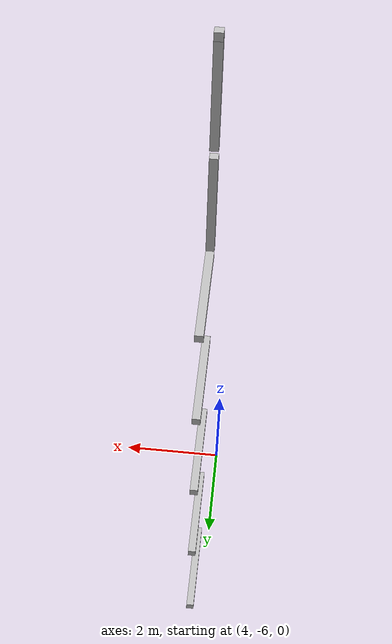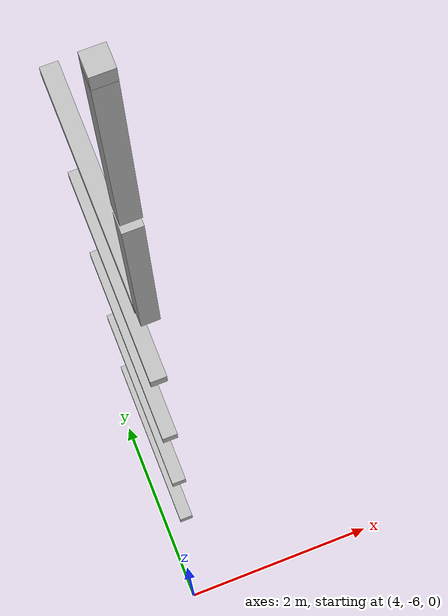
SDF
<sdf version="1.7">
 <world name="default">
  <model name="orthogonal_747_2.000.15_TS">
   <static>1</static>
   <link name="y_link_0_0_5">
    <inertial>
     <mass>1</mass>
     <inertia>
      <ixx>0.166667</ixx>
      <ixy>0</ixy>
      <ixz>0</ixz>
      <iyy>0.166667</iyy>
      <iyz>0</iyz>
      <izz>0.166667</izz>
     </inertia>
    </inertial>
    <pose>10.75 1.075 1.075 0 -0 0</pose>
    <visual name="visual_0">
     <laser_retro>113</laser_retro>
     <geometry><box><size>0.15 1e-06 0.15</size></box></geometry>
     <material>
      <script><name>Gazebo/Grey</name><uri>file://media/materials/scripts/gazebo.material</uri></script>
      <shader type="pixel"><normal_map>__default__</normal_map></shader>
      <ambient>0.678 0.498 0.659 1</ambient>
      <diffuse>0.7 0.7 0.7 1</diffuse>
      <specular>0.01 0.01 0.01 1</specular>
      <emissive>0 0 0 1</emissive>
     </material>
     <pose>0 -1 0 0 -0 0</pose>
     <transparency>1</transparency>
    </visual>
    <visual name="visual_1">
     <laser_retro>114</laser_retro>
     <geometry><box><size>0.15 1e-06 0.15</size></box></geometry>
     <material>
      <script><name>Gazebo/Grey</name><uri>file://media/materials/scripts/gazebo.material</uri></script>
      <shader type="pixel"><normal_map>__default__</normal_map></shader>
      <ambient>0.447 0.624 0.812 1</ambient>
      <diffuse>0.7 0.7 0.7 1</diffuse>
      <specular>0.01 0.01 0.01 1</specular>
      <emissive>0 0 0 1</emissive>
     </material>
     <pose>0 1 0 0 -0 0</pose>
     <transparency>1</transparency>
    </visual>
    <visual name="visual_2">
     <laser_retro>115</laser_retro>
     <geometry><box><size>0.15 2 1e-06</size></box></geometry>
     <material>
      <script><name>Gazebo/Grey</name><uri>file://media/materials/scripts/gazebo.material</uri></script>
      <shader type="pixel"><normal_map>__default__</normal_map></shader>
      <ambient>0.988 0.686 0.243 1</ambient>
      <diffuse>0.7 0.7 0.7 1</diffuse>
      <specular>0.01 0.01 0.01 1</specular>
      <emissive>0 0 0 1</emissive>
     </material>
     <pose>0 0 -0.075 0 -0 0</pose>
     <transparency>1</transparency>
    </visual>
    <visual name="visual_3">
     <laser_retro>116</laser_retro>
     <geometry><box><size>1e-06 2 0.15</size></box></geometry>
     <material>
      <script><name>Gazebo/Grey</name><uri>file://media/materials/scripts/gazebo.material</uri></script>
      <shader type="pixel"><normal_map>__default__</normal_map></shader>
      <ambient>0.988 0.914 0.31 1</ambient>
      <diffuse>0.7 0.7 0.7 1</diffuse>
      <specular>0.01 0.01 0.01 1</specular>
      <emissive>0 0 0 1</emissive>
     </material>
     <pose>0.075 0 0 0 -0 0</pose>
     <transparency>1</transparency>
    </visual>
    <visual name="visual_4">
     <laser_retro>117</laser_retro>
     <geometry><box><size>0.15 2 1e-06</size></box></geometry>
     <material>
      <script><name>Gazebo/Grey</name><uri>file://media/materials/scripts/gazebo.material</uri></script>
      <shader type="pixel"><normal_map>__default__</normal_map></shader>
      <ambient>0.937 0.161 0.161 1</ambient>
      <diffuse>0.7 0.7 0.7 1</diffuse>
      <specular>0.01 0.01 0.01 1</specular>
      <emissive>0 0 0 1</emissive>
     </material>
     <pose>0 0 0.075 0 -0 0</pose>
     <transparency>1</transparency>
    </visual>
    <visual name="visual_5">
     <laser_retro>118</laser_retro>
     <geometry><box><size>1e-06 2 0.15</size></box></geometry>
     <material>
      <script><name>Gazebo/Grey</name><uri>file://media/materials/scripts/gazebo.material</uri></script>
      <shader type="pixel"><normal_map>__default__</normal_map></shader>
      <ambient>0.541 0.886 0.204 1</ambient>
      <diffuse>0.7 0.7 0.7 1</diffuse>
      <specular>0.01 0.01 0.01 1</specular>
      <emissive>0 0 0 1</emissive>
     </material>
     <pose>-0.075 0 0 0 -0 0</pose>
     <transparency>1</transparency>
    </visual>
    <visual name="visual_texture">
     <geometry><box><size>0.149985 1.9998 0.149985</size></box></geometry>
     <material>
      <script>
       <uri>model://BASE_MODELS/simple_block_v2_textured/materials/scripts</uri>
       <uri>model://BASE_MODELS/simple_block_v2_textured/materials/textures</uri>
       <name>metal</name>
      </script>
     </material>
     <laser_retro>119</laser_retro>
    </visual>
    <collision name="collision">
     <geometry><box><size>0.15 2 0.15</size></box></geometry>
     <surface>
      <friction>
       <ode><mu>1</mu><mu2>1</mu2><fdir1>0 0 0</fdir1><slip1>0</slip1><slip2>0</slip2></ode>
       <torsional>
        <coefficient>1</coefficient>
        <patch_radius>0</patch_radius>
        <surface_radius>0</surface_radius>
        <use_patch_radius>1</use_patch_radius>
        <ode><slip>0</slip></ode>
       </torsional>
      </friction>
      <bounce><restitution_coefficient>0</restitution_coefficient><threshold>1e+06</threshold></bounce>
      <contact>
       <collide_without_contact>0</collide_without_contact>
       <collide_without_contact_bitmask>1</collide_without_contact_bitmask>
       <collide_bitmask>1</collide_bitmask>
       <ode>
        <soft_cfm>0</soft_cfm>
        <soft_erp>0.2</soft_erp>
        <kp>1e+13</kp>
        <kd>1</kd>
        <max_vel>0.01</max_vel>
        <min_depth>0</min_depth>
       </ode>
       <bullet>
        <split_impulse>1</split_impulse>
        <split_impulse_penetration_threshold>-0.01</split_impulse_penetration_threshold>
        <soft_cfm>0</soft_cfm>
        <soft_erp>0.2</soft_erp>
        <kp>1e+13</kp>
        <kd>1</kd>
       </bullet>
      </contact>
     </surface>
    </collision>
   </link>
   <link name="y_link_1_0_5">
    <inertial>
     <mass>1</mass>
     <inertia>
      <ixx>0.166667</ixx>
      <ixy>0</ixy>
      <ixz>0</ixz>
      <iyy>0.166667</iyy>
      <iyz>0</iyz>
      <izz>0.166667</izz>
     </inertia>
    </inertial>
    <pose>10.75 1.075 3.225 0 -0 0</pose>
    <visual name="visual_0">
     <laser_retro>897</laser_retro>
     <geometry><box><size>0.15 1e-06 0.15</size></box></geometry>
     <material>
      <script><name>Gazebo/Grey</name><uri>file://media/materials/scripts/gazebo.material</uri></script>
      <shader type="pixel"><normal_map>__default__</normal_map></shader>
      <ambient>0.678 0.498 0.659 1</ambient>
      <diffuse>0.7 0.7 0.7 1</diffuse>
      <specular>0.01 0.01 0.01 1</specular>
      <emissive>0 0 0 1</emissive>
     </material>
     <pose>0 -1 0 0 -0 0</pose>
     <transparency>1</transparency>
    </visual>
    <visual name="visual_1">
     <laser_retro>898</laser_retro>
     <geometry><box><size>0.15 1e-06 0.15</size></box></geometry>
     <material>
      <script><name>Gazebo/Grey</name><uri>file://media/materials/scripts/gazebo.material</uri></script>
      <shader type="pixel"><normal_map>__default__</normal_map></shader>
      <ambient>0.447 0.624 0.812 1</ambient>
      <diffuse>0.7 0.7 0.7 1</diffuse>
      <specular>0.01 0.01 0.01 1</specular>
      <emissive>0 0 0 1</emissive>
     </material>
     <pose>0 1 0 0 -0 0</pose>
     <transparency>1</transparency>
    </visual>
    <visual name="visual_2">
     <laser_retro>899</laser_retro>
     <geometry><box><size>0.15 2 1e-06</size></box></geometry>
     <material>
      <script><name>Gazebo/Grey</name><uri>file://media/materials/scripts/gazebo.material</uri></script>
      <shader type="pixel"><normal_map>__default__</normal_map></shader>
      <ambient>0.988 0.686 0.243 1</ambient>
      <diffuse>0.7 0.7 0.7 1</diffuse>
      <specular>0.01 0.01 0.01 1</specular>
      <emissive>0 0 0 1</emissive>
     </material>
     <pose>0 0 -0.075 0 -0 0</pose>
     <transparency>1</transparency>
    </visual>
    <visual name="visual_3">
     <laser_retro>900</laser_retro>
     <geometry><box><size>1e-06 2 0.15</size></box></geometry>
     <material>
      <script><name>Gazebo/Grey</name><uri>file://media/materials/scripts/gazebo.material</uri></script>
      <shader type="pixel"><normal_map>__default__</normal_map></shader>
      <ambient>0.988 0.914 0.31 1</ambient>
      <diffuse>0.7 0.7 0.7 1</diffuse>
      <specular>0.01 0.01 0.01 1</specular>
      <emissive>0 0 0 1</emissive>
     </material>
     <pose>0.075 0 0 0 -0 0</pose>
     <transparency>1</transparency>
    </visual>
    <visual name="visual_4">
     <laser_retro>901</laser_retro>
     <geometry><box><size>0.15 2 1e-06</size></box></geometry>
     <material>
      <script><name>Gazebo/Grey</name><uri>file://media/materials/scripts/gazebo.material</uri></script>
      <shader type="pixel"><normal_map>__default__</normal_map></shader>
      <ambient>0.937 0.161 0.161 1</ambient>
      <diffuse>0.7 0.7 0.7 1</diffuse>
      <specular>0.01 0.01 0.01 1</specular>
      <emissive>0 0 0 1</emissive>
     </material>
     <pose>0 0 0.075 0 -0 0</pose>
     <transparency>1</transparency>
    </visual>
    <visual name="visual_5">
     <laser_retro>902</laser_retro>
     <geometry><box><size>1e-06 2 0.15</size></box></geometry>
     <material>
      <script><name>Gazebo/Grey</name><uri>file://media/materials/scripts/gazebo.material</uri></script>
      <shader type="pixel"><normal_map>__default__</normal_map></shader>
      <ambient>0.541 0.886 0.204 1</ambient>
      <diffuse>0.7 0.7 0.7 1</diffuse>
      <specular>0.01 0.01 0.01 1</specular>
      <emissive>0 0 0 1</emissive>
     </material>
     <pose>-0.075 0 0 0 -0 0</pose>
     <transparency>1</transparency>
    </visual>
    <visual name="visual_texture">
     <geometry><box><size>0.149985 1.9998 0.149985</size></box></geometry>
     <material>
      <script>
       <uri>model://BASE_MODELS/simple_block_v2_textured/materials/scripts</uri>
       <uri>model://BASE_MODELS/simple_block_v2_textured/materials/textures</uri>
       <name>metal</name>
      </script>
     </material>
     <laser_retro>903</laser_retro>
    </visual>
    <collision name="collision">
     <geometry><box><size>0.15 2 0.15</size></box></geometry>
     <surface>
      <friction>
       <ode><mu>1</mu><mu2>1</mu2><fdir1>0 0 0</fdir1><slip1>0</slip1><slip2>0</slip2></ode>
       <torsional>
        <coefficient>1</coefficient>
        <patch_radius>0</patch_radius>
        <surface_radius>0</surface_radius>
        <use_patch_radius>1</use_patch_radius>
        <ode><slip>0</slip></ode>
       </torsional>
      </friction>
      <bounce><restitution_coefficient>0</restitution_coefficient><threshold>1e+06</threshold></bounce>
      <contact>
       <collide_without_contact>0</collide_without_contact>
       <collide_without_contact_bitmask>1</collide_without_contact_bitmask>
       <collide_bitmask>1</collide_bitmask>
       <ode>
        <soft_cfm>0</soft_cfm>
        <soft_erp>0.2</soft_erp>
        <kp>1e+13</kp>
        <kd>1</kd>
        <max_vel>0.01</max_vel>
        <min_depth>0</min_depth>
       </ode>
       <bullet>
        <split_impulse>1</split_impulse>
        <split_impulse_penetration_threshold>-0.01</split_impulse_penetration_threshold>
        <soft_cfm>0</soft_cfm>
        <soft_erp>0.2</soft_erp>
        <kp>1e+13</kp>
        <kd>1</kd>
       </bullet>
      </contact>
     </surface>
    </collision>
   </link>
   <link name="y_link_2_0_5">
    <inertial>
     <mass>1</mass>
     <inertia>
      <ixx>0.166667</ixx>
      <ixy>0</ixy>
      <ixz>0</ixz>
      <iyy>0.166667</iyy>
      <iyz>0</iyz>
      <izz>0.166667</izz>
     </inertia>
    </inertial>
    <pose>10.75 1.075 5.375 0 -0 0</pose>
    <visual name="visual_0">
     <laser_retro>1800</laser_retro>
     <geometry><box><size>0.15 1e-06 0.15</size></box></geometry>
     <material>
      <script><name>Gazebo/Grey</name><uri>file://media/materials/scripts/gazebo.material</uri></script>
      <shader type="pixel"><normal_map>__default__</normal_map></shader>
      <ambient>0.678 0.498 0.659 1</ambient>
      <diffuse>0.7 0.7 0.7 1</diffuse>
      <specular>0.01 0.01 0.01 1</specular>
      <emissive>0 0 0 1</emissive>
     </material>
     <pose>0 -1 0 0 -0 0</pose>
     <transparency>1</transparency>
    </visual>
    <visual name="visual_1">
     <laser_retro>1801</laser_retro>
     <geometry><box><size>0.15 1e-06 0.15</size></box></geometry>
     <material>
      <script><name>Gazebo/Grey</name><uri>file://media/materials/scripts/gazebo.material</uri></script>
      <shader type="pixel"><normal_map>__default__</normal_map></shader>
      <ambient>0.447 0.624 0.812 1</ambient>
      <diffuse>0.7 0.7 0.7 1</diffuse>
      <specular>0.01 0.01 0.01 1</specular>
      <emissive>0 0 0 1</emissive>
     </material>
     <pose>0 1 0 0 -0 0</pose>
     <transparency>1</transparency>
    </visual>
    <visual name="visual_2">
     <laser_retro>1802</laser_retro>
     <geometry><box><size>0.15 2 1e-06</size></box></geometry>
     <material>
      <script><name>Gazebo/Grey</name><uri>file://media/materials/scripts/gazebo.material</uri></script>
      <shader type="pixel"><normal_map>__default__</normal_map></shader>
      <ambient>0.988 0.686 0.243 1</ambient>
      <diffuse>0.7 0.7 0.7 1</diffuse>
      <specular>0.01 0.01 0.01 1</specular>
      <emissive>0 0 0 1</emissive>
     </material>
     <pose>0 0 -0.075 0 -0 0</pose>
     <transparency>1</transparency>
    </visual>
    <visual name="visual_3">
     <laser_retro>1803</laser_retro>
     <geometry><box><size>1e-06 2 0.15</size></box></geometry>
     <material>
      <script><name>Gazebo/Grey</name><uri>file://media/materials/scripts/gazebo.material</uri></script>
      <shader type="pixel"><normal_map>__default__</normal_map></shader>
      <ambient>0.988 0.914 0.31 1</ambient>
      <diffuse>0.7 0.7 0.7 1</diffuse>
      <specular>0.01 0.01 0.01 1</specular>
      <emissive>0 0 0 1</emissive>
     </material>
     <pose>0.075 0 0 0 -0 0</pose>
     <transparency>1</transparency>
    </visual>
    <visual name="visual_4">
     <laser_retro>1804</laser_retro>
     <geometry><box><size>0.15 2 1e-06</size></box></geometry>
     <material>
      <script><name>Gazebo/Grey</name><uri>file://media/materials/scripts/gazebo.material</uri></script>
      <shader type="pixel"><normal_map>__default__</normal_map></shader>
      <ambient>0.937 0.161 0.161 1</ambient>
      <diffuse>0.7 0.7 0.7 1</diffuse>
      <specular>0.01 0.01 0.01 1</specular>
      <emissive>0 0 0 1</emissive>
     </material>
     <pose>0 0 0.075 0 -0 0</pose>
     <transparency>1</transparency>
    </visual>
    <visual name="visual_5">
     <laser_retro>1805</laser_retro>
     <geometry><box><size>1e-06 2 0.15</size></box></geometry>
     <material>
      <script><name>Gazebo/Grey</name><uri>file://media/materials/scripts/gazebo.material</uri></script>
      <shader type="pixel"><normal_map>__default__</normal_map></shader>
      <ambient>0.541 0.886 0.204 1</ambient>
      <diffuse>0.7 0.7 0.7 1</diffuse>
      <specular>0.01 0.01 0.01 1</specular>
      <emissive>0 0 0 1</emissive>
     </material>
     <pose>-0.075 0 0 0 -0 0</pose>
     <transparency>1</transparency>
    </visual>
    <visual name="visual_texture">
     <geometry><box><size>0.149985 1.9998 0.149985</size></box></geometry>
     <material>
      <script>
       <uri>model://BASE_MODELS/simple_block_v2_textured/materials/scripts</uri>
       <uri>model://BASE_MODELS/simple_block_v2_textured/materials/textures</uri>
       <name>metal</name>
      </script>
     </material>
     <laser_retro>1806</laser_retro>
    </visual>
    <collision name="collision">
     <geometry><box><size>0.15 2 0.15</size></box></geometry>
     <surface>
      <friction>
       <ode><mu>1</mu><mu2>1</mu2><fdir1>0 0 0</fdir1><slip1>0</slip1><slip2>0</slip2></ode>
       <torsional>
        <coefficient>1</coefficient>
        <patch_radius>0</patch_radius>
        <surface_radius>0</surface_radius>
        <use_patch_radius>1</use_patch_radius>
        <ode><slip>0</slip></ode>
       </torsional>
      </friction>
      <bounce><restitution_coefficient>0</restitution_coefficient><threshold>1e+06</threshold></bounce>
      <contact>
       <collide_without_contact>0</collide_without_contact>
       <collide_without_contact_bitmask>1</collide_without_contact_bitmask>
       <collide_bitmask>1</collide_bitmask>
       <ode>
        <soft_cfm>0</soft_cfm>
        <soft_erp>0.2</soft_erp>
        <kp>1e+13</kp>
        <kd>1</kd>
        <max_vel>0.01</max_vel>
        <min_depth>0</min_depth>
       </ode>
       <bullet>
        <split_impulse>1</split_impulse>
        <split_impulse_penetration_threshold>-0.01</split_impulse_penetration_threshold>
        <soft_cfm>0</soft_cfm>
        <soft_erp>0.2</soft_erp>
        <kp>1e+13</kp>
        <kd>1</kd>
       </bullet>
      </contact>
     </surface>
    </collision>
   </link>
   <link name="y_link_3_0_5">
    <inertial>
     <mass>1</mass>
     <inertia>
      <ixx>0.166667</ixx>
      <ixy>0</ixy>
      <ixz>0</ixz>
      <iyy>0.166667</iyy>
      <iyz>0</iyz>
      <izz>0.166667</izz>
     </inertia>
    </inertial>
    <pose>10.75 1.075 7.525 0 -0 0</pose>
    <visual name="visual_0">
     <laser_retro>2703</laser_retro>
     <geometry><box><size>0.15 1e-06 0.15</size></box></geometry>
     <material>
      <script><name>Gazebo/Grey</name><uri>file://media/materials/scripts/gazebo.material</uri></script>
      <shader type="pixel"><normal_map>__default__</normal_map></shader>
      <ambient>0.678 0.498 0.659 1</ambient>
      <diffuse>0.7 0.7 0.7 1</diffuse>
      <specular>0.01 0.01 0.01 1</specular>
      <emissive>0 0 0 1</emissive>
     </material>
     <pose>0 -1 0 0 -0 0</pose>
     <transparency>1</transparency>
    </visual>
    <visual name="visual_1">
     <laser_retro>2704</laser_retro>
     <geometry><box><size>0.15 1e-06 0.15</size></box></geometry>
     <material>
      <script><name>Gazebo/Grey</name><uri>file://media/materials/scripts/gazebo.material</uri></script>
      <shader type="pixel"><normal_map>__default__</normal_map></shader>
      <ambient>0.447 0.624 0.812 1</ambient>
      <diffuse>0.7 0.7 0.7 1</diffuse>
      <specular>0.01 0.01 0.01 1</specular>
      <emissive>0 0 0 1</emissive>
     </material>
     <pose>0 1 0 0 -0 0</pose>
     <transparency>1</transparency>
    </visual>
    <visual name="visual_2">
     <laser_retro>2705</laser_retro>
     <geometry><box><size>0.15 2 1e-06</size></box></geometry>
     <material>
      <script><name>Gazebo/Grey</name><uri>file://media/materials/scripts/gazebo.material</uri></script>
      <shader type="pixel"><normal_map>__default__</normal_map></shader>
      <ambient>0.988 0.686 0.243 1</ambient>
      <diffuse>0.7 0.7 0.7 1</diffuse>
      <specular>0.01 0.01 0.01 1</specular>
      <emissive>0 0 0 1</emissive>
     </material>
     <pose>0 0 -0.075 0 -0 0</pose>
     <transparency>1</transparency>
    </visual>
    <visual name="visual_3">
     <laser_retro>2706</laser_retro>
     <geometry><box><size>1e-06 2 0.15</size></box></geometry>
     <material>
      <script><name>Gazebo/Grey</name><uri>file://media/materials/scripts/gazebo.material</uri></script>
      <shader type="pixel"><normal_map>__default__</normal_map></shader>
      <ambient>0.988 0.914 0.31 1</ambient>
      <diffuse>0.7 0.7 0.7 1</diffuse>
      <specular>0.01 0.01 0.01 1</specular>
      <emissive>0 0 0 1</emissive>
     </material>
     <pose>0.075 0 0 0 -0 0</pose>
     <transparency>1</transparency>
    </visual>
    <visual name="visual_4">
     <laser_retro>2707</laser_retro>
     <geometry><box><size>0.15 2 1e-06</size></box></geometry>
     <material>
      <script><name>Gazebo/Grey</name><uri>file://media/materials/scripts/gazebo.material</uri></script>
      <shader type="pixel"><normal_map>__default__</normal_map></shader>
      <ambient>0.937 0.161 0.161 1</ambient>
      <diffuse>0.7 0.7 0.7 1</diffuse>
      <specular>0.01 0.01 0.01 1</specular>
      <emissive>0 0 0 1</emissive>
     </material>
     <pose>0 0 0.075 0 -0 0</pose>
     <transparency>1</transparency>
    </visual>
    <visual name="visual_5">
     <laser_retro>2708</laser_retro>
     <geometry><box><size>1e-06 2 0.15</size></box></geometry>
     <material>
      <script><name>Gazebo/Grey</name><uri>file://media/materials/scripts/gazebo.material</uri></script>
      <shader type="pixel"><normal_map>__default__</normal_map></shader>
      <ambient>0.541 0.886 0.204 1</ambient>
      <diffuse>0.7 0.7 0.7 1</diffuse>
      <specular>0.01 0.01 0.01 1</specular>
      <emissive>0 0 0 1</emissive>
     </material>
     <pose>-0.075 0 0 0 -0 0</pose>
     <transparency>1</transparency>
    </visual>
    <visual name="visual_texture">
     <geometry><box><size>0.149985 1.9998 0.149985</size></box></geometry>
     <material>
      <script>
       <uri>model://BASE_MODELS/simple_block_v2_textured/materials/scripts</uri>
       <uri>model://BASE_MODELS/simple_block_v2_textured/materials/textures</uri>
       <name>metal</name>
      </script>
     </material>
     <laser_retro>2709</laser_retro>
    </visual>
    <collision name="collision">
     <geometry><box><size>0.15 2 0.15</size></box></geometry>
     <surface>
      <friction>
       <ode><mu>1</mu><mu2>1</mu2><fdir1>0 0 0</fdir1><slip1>0</slip1><slip2>0</slip2></ode>
       <torsional>
        <coefficient>1</coefficient>
        <patch_radius>0</patch_radius>
        <surface_radius>0</surface_radius>
        <use_patch_radius>1</use_patch_radius>
        <ode><slip>0</slip></ode>
       </torsional>
      </friction>
      <bounce><restitution_coefficient>0</restitution_coefficient><threshold>1e+06</threshold></bounce>
      <contact>
       <collide_without_contact>0</collide_without_contact>
       <collide_without_contact_bitmask>1</collide_without_contact_bitmask>
       <collide_bitmask>1</collide_bitmask>
       <ode>
        <soft_cfm>0</soft_cfm>
        <soft_erp>0.2</soft_erp>
        <kp>1e+13</kp>
        <kd>1</kd>
        <max_vel>0.01</max_vel>
        <min_depth>0</min_depth>
       </ode>
       <bullet>
        <split_impulse>1</split_impulse>
        <split_impulse_penetration_threshold>-0.01</split_impulse_penetration_threshold>
        <soft_cfm>0</soft_cfm>
        <soft_erp>0.2</soft_erp>
        <kp>1e+13</kp>
        <kd>1</kd>
       </bullet>
      </contact>
     </surface>
    </collision>
   </link>
   <link name="y_link_4_0_5">
    <inertial>
     <mass>1</mass>
     <inertia>
      <ixx>0.166667</ixx>
      <ixy>0</ixy>
      <ixz>0</ixz>
      <iyy>0.166667</iyy>
      <iyz>0</iyz>
      <izz>0.166667</izz>
     </inertia>
    </inertial>
    <pose>10.75 1.075 9.675 0 -0 0</pose>
    <visual name="visual_0">
     <laser_retro>3606</laser_retro>
     <geometry><box><size>0.15 1e-06 0.15</size></box></geometry>
     <material>
      <script><name>Gazebo/Grey</name><uri>file://media/materials/scripts/gazebo.material</uri></script>
      <shader type="pixel"><normal_map>__default__</normal_map></shader>
      <ambient>0.678 0.498 0.659 1</ambient>
      <diffuse>0.7 0.7 0.7 1</diffuse>
      <specular>0.01 0.01 0.01 1</specular>
      <emissive>0 0 0 1</emissive>
     </material>
     <pose>0 -1 0 0 -0 0</pose>
     <transparency>1</transparency>
    </visual>
    <visual name="visual_1">
     <laser_retro>3607</laser_retro>
     <geometry><box><size>0.15 1e-06 0.15</size></box></geometry>
     <material>
      <script><name>Gazebo/Grey</name><uri>file://media/materials/scripts/gazebo.material</uri></script>
      <shader type="pixel"><normal_map>__default__</normal_map></shader>
      <ambient>0.447 0.624 0.812 1</ambient>
      <diffuse>0.7 0.7 0.7 1</diffuse>
      <specular>0.01 0.01 0.01 1</specular>
      <emissive>0 0 0 1</emissive>
     </material>
     <pose>0 1 0 0 -0 0</pose>
     <transparency>1</transparency>
    </visual>
    <visual name="visual_2">
     <laser_retro>3608</laser_retro>
     <geometry><box><size>0.15 2 1e-06</size></box></geometry>
     <material>
      <script><name>Gazebo/Grey</name><uri>file://media/materials/scripts/gazebo.material</uri></script>
      <shader type="pixel"><normal_map>__default__</normal_map></shader>
      <ambient>0.988 0.686 0.243 1</ambient>
      <diffuse>0.7 0.7 0.7 1</diffuse>
      <specular>0.01 0.01 0.01 1</specular>
      <emissive>0 0 0 1</emissive>
     </material>
     <pose>0 0 -0.075 0 -0 0</pose>
     <transparency>1</transparency>
    </visual>
    <visual name="visual_3">
     <laser_retro>3609</laser_retro>
     <geometry><box><size>1e-06 2 0.15</size></box></geometry>
     <material>
      <script><name>Gazebo/Grey</name><uri>file://media/materials/scripts/gazebo.material</uri></script>
      <shader type="pixel"><normal_map>__default__</normal_map></shader>
      <ambient>0.988 0.914 0.31 1</ambient>
      <diffuse>0.7 0.7 0.7 1</diffuse>
      <specular>0.01 0.01 0.01 1</specular>
      <emissive>0 0 0 1</emissive>
     </material>
     <pose>0.075 0 0 0 -0 0</pose>
     <transparency>1</transparency>
    </visual>
    <visual name="visual_4">
     <laser_retro>3610</laser_retro>
     <geometry><box><size>0.15 2 1e-06</size></box></geometry>
     <material>
      <script><name>Gazebo/Grey</name><uri>file://media/materials/scripts/gazebo.material</uri></script>
      <shader type="pixel"><normal_map>__default__</normal_map></shader>
      <ambient>0.937 0.161 0.161 1</ambient>
      <diffuse>0.7 0.7 0.7 1</diffuse>
      <specular>0.01 0.01 0.01 1</specular>
      <emissive>0 0 0 1</emissive>
     </material>
     <pose>0 0 0.075 0 -0 0</pose>
     <transparency>1</transparency>
    </visual>
    <visual name="visual_5">
     <laser_retro>3611</laser_retro>
     <geometry><box><size>1e-06 2 0.15</size></box></geometry>
     <material>
      <script><name>Gazebo/Grey</name><uri>file://media/materials/scripts/gazebo.material</uri></script>
      <shader type="pixel"><normal_map>__default__</normal_map></shader>
      <ambient>0.541 0.886 0.204 1</ambient>
      <diffuse>0.7 0.7 0.7 1</diffuse>
      <specular>0.01 0.01 0.01 1</specular>
      <emissive>0 0 0 1</emissive>
     </material>
     <pose>-0.075 0 0 0 -0 0</pose>
     <transparency>1</transparency>
    </visual>
    <visual name="visual_texture">
     <geometry><box><size>0.149985 1.9998 0.149985</size></box></geometry>
     <material>
      <script>
       <uri>model://BASE_MODELS/simple_block_v2_textured/materials/scripts</uri>
       <uri>model://BASE_MODELS/simple_block_v2_textured/materials/textures</uri>
       <name>metal</name>
      </script>
     </material>
     <laser_retro>3612</laser_retro>
    </visual>
    <collision name="collision">
     <geometry><box><size>0.15 2 0.15</size></box></geometry>
     <surface>
      <friction>
       <ode><mu>1</mu><mu2>1</mu2><fdir1>0 0 0</fdir1><slip1>0</slip1><slip2>0</slip2></ode>
       <torsional>
        <coefficient>1</coefficient>
        <patch_radius>0</patch_radius>
        <surface_radius>0</surface_radius>
        <use_patch_radius>1</use_patch_radius>
        <ode><slip>0</slip></ode>
       </torsional>
      </friction>
      <bounce><restitution_coefficient>0</restitution_coefficient><threshold>1e+06</threshold></bounce>
      <contact>
       <collide_without_contact>0</collide_without_contact>
       <collide_without_contact_bitmask>1</collide_without_contact_bitmask>
       <collide_bitmask>1</collide_bitmask>
       <ode>
        <soft_cfm>0</soft_cfm>
        <soft_erp>0.2</soft_erp>
        <kp>1e+13</kp>
        <kd>1</kd>
        <max_vel>0.01</max_vel>
        <min_depth>0</min_depth>
       </ode>
       <bullet>
        <split_impulse>1</split_impulse>
        <split_impulse_penetration_threshold>-0.01</split_impulse_penetration_threshold>
        <soft_cfm>0</soft_cfm>
        <soft_erp>0.2</soft_erp>
        <kp>1e+13</kp>
        <kd>1</kd>
       </bullet>
      </contact>
     </surface>
    </collision>
   </link>
   <link name="z_link_5_0_5">
    <inertial>
     <mass>1</mass>
     <inertia>
      <ixx>0.166667</ixx>
      <ixy>0</ixy>
      <ixz>0</ixz>
      <iyy>0.166667</iyy>
      <iyz>0</iyz>
      <izz>0.166667</izz>
     </inertia>
    </inertial>
    <pose>10.75 0 10.75 0 -0 0</pose>
    <visual name="visual_0">
     <laser_retro>4523</laser_retro>
     <geometry><box><size>0.15 1e-06 2</size></box></geometry>
     <material>
      <script><name>Gazebo/Grey</name><uri>file://media/materials/scripts/gazebo.material</uri></script>
      <shader type="pixel"><normal_map>__default__</normal_map></shader>
      <ambient>0.678 0.498 0.659 1</ambient>
      <diffuse>0.7 0.7 0.7 1</diffuse>
      <specular>0.01 0.01 0.01 1</specular>
      <emissive>0 0 0 1</emissive>
     </material>
     <pose>0 -0.075 0 0 -0 0</pose>
     <transparency>1</transparency>
    </visual>
    <visual name="visual_1">
     <laser_retro>4524</laser_retro>
     <geometry><box><size>0.15 1e-06 2</size></box></geometry>
     <material>
      <script><name>Gazebo/Grey</name><uri>file://media/materials/scripts/gazebo.material</uri></script>
      <shader type="pixel"><normal_map>__default__</normal_map></shader>
      <ambient>0.447 0.624 0.812 1</ambient>
      <diffuse>0.7 0.7 0.7 1</diffuse>
      <specular>0.01 0.01 0.01 1</specular>
      <emissive>0 0 0 1</emissive>
     </material>
     <pose>0 0.075 0 0 -0 0</pose>
     <transparency>1</transparency>
    </visual>
    <visual name="visual_2">
     <laser_retro>4525</laser_retro>
     <geometry><box><size>0.15 0.15 1e-06</size></box></geometry>
     <material>
      <script><name>Gazebo/Grey</name><uri>file://media/materials/scripts/gazebo.material</uri></script>
      <shader type="pixel"><normal_map>__default__</normal_map></shader>
      <ambient>0.988 0.686 0.243 1</ambient>
      <diffuse>0.7 0.7 0.7 1</diffuse>
      <specular>0.01 0.01 0.01 1</specular>
      <emissive>0 0 0 1</emissive>
     </material>
     <pose>0 0 -1 0 -0 0</pose>
     <transparency>1</transparency>
    </visual>
    <visual name="visual_3">
     <laser_retro>4526</laser_retro>
     <geometry><box><size>1e-06 0.15 2</size></box></geometry>
     <material>
      <script><name>Gazebo/Grey</name><uri>file://media/materials/scripts/gazebo.material</uri></script>
      <shader type="pixel"><normal_map>__default__</normal_map></shader>
      <ambient>0.988 0.914 0.31 1</ambient>
      <diffuse>0.7 0.7 0.7 1</diffuse>
      <specular>0.01 0.01 0.01 1</specular>
      <emissive>0 0 0 1</emissive>
     </material>
     <pose>0.075 0 0 0 -0 0</pose>
     <transparency>1</transparency>
    </visual>
    <visual name="visual_4">
     <laser_retro>4527</laser_retro>
     <geometry><box><size>0.15 0.15 1e-06</size></box></geometry>
     <material>
      <script><name>Gazebo/Grey</name><uri>file://media/materials/scripts/gazebo.material</uri></script>
      <shader type="pixel"><normal_map>__default__</normal_map></shader>
      <ambient>0.937 0.161 0.161 1</ambient>
      <diffuse>0.7 0.7 0.7 1</diffuse>
      <specular>0.01 0.01 0.01 1</specular>
      <emissive>0 0 0 1</emissive>
     </material>
     <pose>0 0 1 0 -0 0</pose>
     <transparency>1</transparency>
    </visual>
    <visual name="visual_5">
     <laser_retro>4528</laser_retro>
     <geometry><box><size>1e-06 0.15 2</size></box></geometry>
     <material>
      <script><name>Gazebo/Grey</name><uri>file://media/materials/scripts/gazebo.material</uri></script>
      <shader type="pixel"><normal_map>__default__</normal_map></shader>
      <ambient>0.541 0.886 0.204 1</ambient>
      <diffuse>0.7 0.7 0.7 1</diffuse>
      <specular>0.01 0.01 0.01 1</specular>
      <emissive>0 0 0 1</emissive>
     </material>
     <pose>-0.075 0 0 0 -0 0</pose>
     <transparency>1</transparency>
    </visual>
    <visual name="visual_texture">
     <geometry><box><size>0.149985 0.149985 1.9998</size></box></geometry>
     <material>
      <script>
       <uri>model://BASE_MODELS/simple_block_v2_textured/materials/scripts</uri>
       <uri>model://BASE_MODELS/simple_block_v2_textured/materials/textures</uri>
       <name>metal</name>
      </script>
     </material>
     <laser_retro>4529</laser_retro>
    </visual>
    <collision name="collision">
     <geometry><box><size>0.15 0.15 2</size></box></geometry>
     <surface>
      <friction>
       <ode><mu>1</mu><mu2>1</mu2><fdir1>0 0 0</fdir1><slip1>0</slip1><slip2>0</slip2></ode>
       <torsional>
        <coefficient>1</coefficient>
        <patch_radius>0</patch_radius>
        <surface_radius>0</surface_radius>
        <use_patch_radius>1</use_patch_radius>
        <ode><slip>0</slip></ode>
       </torsional>
      </friction>
      <bounce><restitution_coefficient>0</restitution_coefficient><threshold>1e+06</threshold></bounce>
      <contact>
       <collide_without_contact>0</collide_without_contact>
       <collide_without_contact_bitmask>1</collide_without_contact_bitmask>
       <collide_bitmask>1</collide_bitmask>
       <ode>
        <soft_cfm>0</soft_cfm>
        <soft_erp>0.2</soft_erp>
        <kp>1e+13</kp>
        <kd>1</kd>
        <max_vel>0.01</max_vel>
        <min_depth>0</min_depth>
       </ode>
       <bullet>
        <split_impulse>1</split_impulse>
        <split_impulse_penetration_threshold>-0.01</split_impulse_penetration_threshold>
        <soft_cfm>0</soft_cfm>
        <soft_erp>0.2</soft_erp>
        <kp>1e+13</kp>
        <kd>1</kd>
       </bullet>
      </contact>
     </surface>
    </collision>
   </link>
   <link name="u_link_6_0_5">
    <inertial>
     <mass>1</mass>
     <inertia>
      <ixx>0.166667</ixx>
      <ixy>0</ixy>
      <ixz>0</ixz>
      <iyy>0.166667</iyy>
      <iyz>0</iyz>
      <izz>0.166667</izz>
     </inertia>
    </inertial>
    <pose>10.75 0 13.975 0 -0 0</pose>
    <visual name="visual_0">
     <laser_retro>5419</laser_retro>
     <geometry><box><size>0.15 1e-06 0.15</size></box></geometry>
     <material>
      <script><name>Gazebo/Grey</name><uri>file://media/materials/scripts/gazebo.material</uri></script>
      <shader type="pixel"><normal_map>__default__</normal_map></shader>
      <ambient>0.678 0.498 0.659 1</ambient>
      <diffuse>0.7 0.7 0.7 1</diffuse>
      <specular>0.01 0.01 0.01 1</specular>
      <emissive>0 0 0 1</emissive>
     </material>
     <pose>0 -0.075 0 0 -0 0</pose>
     <transparency>1</transparency>
    </visual>
    <visual name="visual_1">
     <laser_retro>5420</laser_retro>
     <geometry><box><size>0.15 1e-06 0.15</size></box></geometry>
     <material>
      <script><name>Gazebo/Grey</name><uri>file://media/materials/scripts/gazebo.material</uri></script>
      <shader type="pixel"><normal_map>__default__</normal_map></shader>
      <ambient>0.447 0.624 0.812 1</ambient>
      <diffuse>0.7 0.7 0.7 1</diffuse>
      <specular>0.01 0.01 0.01 1</specular>
      <emissive>0 0 0 1</emissive>
     </material>
     <pose>0 0.075 0 0 -0 0</pose>
     <transparency>1</transparency>
    </visual>
    <visual name="visual_2">
     <laser_retro>5421</laser_retro>
     <geometry><box><size>0.15 0.15 1e-06</size></box></geometry>
     <material>
      <script><name>Gazebo/Grey</name><uri>file://media/materials/scripts/gazebo.material</uri></script>
      <shader type="pixel"><normal_map>__default__</normal_map></shader>
      <ambient>0.988 0.686 0.243 1</ambient>
      <diffuse>0.7 0.7 0.7 1</diffuse>
      <specular>0.01 0.01 0.01 1</specular>
      <emissive>0 0 0 1</emissive>
     </material>
     <pose>0 0 -0.075 0 -0 0</pose>
     <transparency>1</transparency>
    </visual>
    <visual name="visual_3">
     <laser_retro>5422</laser_retro>
     <geometry><box><size>1e-06 0.15 0.15</size></box></geometry>
     <material>
      <script><name>Gazebo/Grey</name><uri>file://media/materials/scripts/gazebo.material</uri></script>
      <shader type="pixel"><normal_map>__default__</normal_map></shader>
      <ambient>0.988 0.914 0.31 1</ambient>
      <diffuse>0.7 0.7 0.7 1</diffuse>
      <specular>0.01 0.01 0.01 1</specular>
      <emissive>0 0 0 1</emissive>
     </material>
     <pose>0.075 0 0 0 -0 0</pose>
     <transparency>1</transparency>
    </visual>
    <visual name="visual_4">
     <laser_retro>5423</laser_retro>
     <geometry><box><size>0.15 0.15 1e-06</size></box></geometry>
     <material>
      <script><name>Gazebo/Grey</name><uri>file://media/materials/scripts/gazebo.material</uri></script>
      <shader type="pixel"><normal_map>__default__</normal_map></shader>
      <ambient>0.937 0.161 0.161 1</ambient>
      <diffuse>0.7 0.7 0.7 1</diffuse>
      <specular>0.01 0.01 0.01 1</specular>
      <emissive>0 0 0 1</emissive>
     </material>
     <pose>0 0 0.075 0 -0 0</pose>
     <transparency>1</transparency>
    </visual>
    <visual name="visual_5">
     <laser_retro>5424</laser_retro>
     <geometry><box><size>1e-06 0.15 0.15</size></box></geometry>
     <material>
      <script><name>Gazebo/Grey</name><uri>file://media/materials/scripts/gazebo.material</uri></script>
      <shader type="pixel"><normal_map>__default__</normal_map></shader>
      <ambient>0.541 0.886 0.204 1</ambient>
      <diffuse>0.7 0.7 0.7 1</diffuse>
      <specular>0.01 0.01 0.01 1</specular>
      <emissive>0 0 0 1</emissive>
     </material>
     <pose>-0.075 0 0 0 -0 0</pose>
     <transparency>1</transparency>
    </visual>
    <visual name="visual_texture">
     <geometry><box><size>0.149985 0.149985 0.149985</size></box></geometry>
     <material>
      <script>
       <uri>model://BASE_MODELS/simple_block_v2_textured/materials/scripts</uri>
       <uri>model://BASE_MODELS/simple_block_v2_textured/materials/textures</uri>
       <name>metal</name>
      </script>
     </material>
     <laser_retro>5425</laser_retro>
    </visual>
    <collision name="collision">
     <geometry><box><size>0.15 0.15 0.15</size></box></geometry>
     <surface>
      <friction>
       <ode><mu>1</mu><mu2>1</mu2><fdir1>0 0 0</fdir1><slip1>0</slip1><slip2>0</slip2></ode>
       <torsional>
        <coefficient>1</coefficient>
        <patch_radius>0</patch_radius>
        <surface_radius>0</surface_radius>
        <use_patch_radius>1</use_patch_radius>
        <ode><slip>0</slip></ode>
       </torsional>
      </friction>
      <bounce><restitution_coefficient>0</restitution_coefficient><threshold>1e+06</threshold></bounce>
      <contact>
       <collide_without_contact>0</collide_without_contact>
       <collide_without_contact_bitmask>1</collide_without_contact_bitmask>
       <collide_bitmask>1</collide_bitmask>
       <ode>
        <soft_cfm>0</soft_cfm>
        <soft_erp>0.2</soft_erp>
        <kp>1e+13</kp>
        <kd>1</kd>
        <max_vel>0.01</max_vel>
        <min_depth>0</min_depth>
       </ode>
       <bullet>
        <split_impulse>1</split_impulse>
        <split_impulse_penetration_threshold>-0.01</split_impulse_penetration_threshold>
        <soft_cfm>0</soft_cfm>
        <soft_erp>0.2</soft_erp>
        <kp>1e+13</kp>
        <kd>1</kd>
       </bullet>
      </contact>
     </surface>
    </collision>
   </link>
   <link name="z_link_6_0_5">
    <inertial>
     <mass>1</mass>
     <inertia>
      <ixx>0.166667</ixx>
      <ixy>0</ixy>
      <ixz>0</ixz>
      <iyy>0.166667</iyy>
      <iyz>0</iyz>
      <izz>0.166667</izz>
     </inertia>
    </inertial>
    <pose>10.75 0 12.9 0 -0 0</pose>
    <visual name="visual_0">
     <laser_retro>5426</laser_retro>
     <geometry><box><size>0.15 1e-06 2</size></box></geometry>
     <material>
      <script><name>Gazebo/Grey</name><uri>file://media/materials/scripts/gazebo.material</uri></script>
      <shader type="pixel"><normal_map>__default__</normal_map></shader>
      <ambient>0.678 0.498 0.659 1</ambient>
      <diffuse>0.7 0.7 0.7 1</diffuse>
      <specular>0.01 0.01 0.01 1</specular>
      <emissive>0 0 0 1</emissive>
     </material>
     <pose>0 -0.075 0 0 -0 0</pose>
     <transparency>1</transparency>
    </visual>
    <visual name="visual_1">
     <laser_retro>5427</laser_retro>
     <geometry><box><size>0.15 1e-06 2</size></box></geometry>
     <material>
      <script><name>Gazebo/Grey</name><uri>file://media/materials/scripts/gazebo.material</uri></script>
      <shader type="pixel"><normal_map>__default__</normal_map></shader>
      <ambient>0.447 0.624 0.812 1</ambient>
      <diffuse>0.7 0.7 0.7 1</diffuse>
      <specular>0.01 0.01 0.01 1</specular>
      <emissive>0 0 0 1</emissive>
     </material>
     <pose>0 0.075 0 0 -0 0</pose>
     <transparency>1</transparency>
    </visual>
    <visual name="visual_2">
     <laser_retro>5428</laser_retro>
     <geometry><box><size>0.15 0.15 1e-06</size></box></geometry>
     <material>
      <script><name>Gazebo/Grey</name><uri>file://media/materials/scripts/gazebo.material</uri></script>
      <shader type="pixel"><normal_map>__default__</normal_map></shader>
      <ambient>0.988 0.686 0.243 1</ambient>
      <diffuse>0.7 0.7 0.7 1</diffuse>
      <specular>0.01 0.01 0.01 1</specular>
      <emissive>0 0 0 1</emissive>
     </material>
     <pose>0 0 -1 0 -0 0</pose>
     <transparency>1</transparency>
    </visual>
    <visual name="visual_3">
     <laser_retro>5429</laser_retro>
     <geometry><box><size>1e-06 0.15 2</size></box></geometry>
     <material>
      <script><name>Gazebo/Grey</name><uri>file://media/materials/scripts/gazebo.material</uri></script>
      <shader type="pixel"><normal_map>__default__</normal_map></shader>
      <ambient>0.988 0.914 0.31 1</ambient>
      <diffuse>0.7 0.7 0.7 1</diffuse>
      <specular>0.01 0.01 0.01 1</specular>
      <emissive>0 0 0 1</emissive>
     </material>
     <pose>0.075 0 0 0 -0 0</pose>
     <transparency>1</transparency>
    </visual>
    <visual name="visual_4">
     <laser_retro>5430</laser_retro>
     <geometry><box><size>0.15 0.15 1e-06</size></box></geometry>
     <material>
      <script><name>Gazebo/Grey</name><uri>file://media/materials/scripts/gazebo.material</uri></script>
      <shader type="pixel"><normal_map>__default__</normal_map></shader>
      <ambient>0.937 0.161 0.161 1</ambient>
      <diffuse>0.7 0.7 0.7 1</diffuse>
      <specular>0.01 0.01 0.01 1</specular>
      <emissive>0 0 0 1</emissive>
     </material>
     <pose>0 0 1 0 -0 0</pose>
     <transparency>1</transparency>
    </visual>
    <visual name="visual_5">
     <laser_retro>5431</laser_retro>
     <geometry><box><size>1e-06 0.15 2</size></box></geometry>
     <material>
      <script><name>Gazebo/Grey</name><uri>file://media/materials/scripts/gazebo.material</uri></script>
      <shader type="pixel"><normal_map>__default__</normal_map></shader>
      <ambient>0.541 0.886 0.204 1</ambient>
      <diffuse>0.7 0.7 0.7 1</diffuse>
      <specular>0.01 0.01 0.01 1</specular>
      <emissive>0 0 0 1</emissive>
     </material>
     <pose>-0.075 0 0 0 -0 0</pose>
     <transparency>1</transparency>
    </visual>
    <visual name="visual_texture">
     <geometry><box><size>0.149985 0.149985 1.9998</size></box></geometry>
     <material>
      <script>
       <uri>model://BASE_MODELS/simple_block_v2_textured/materials/scripts</uri>
       <uri>model://BASE_MODELS/simple_block_v2_textured/materials/textures</uri>
       <name>metal</name>
      </script>
     </material>
     <laser_retro>5432</laser_retro>
    </visual>
    <collision name="collision">
     <geometry><box><size>0.15 0.15 2</size></box></geometry>
     <surface>
      <friction>
       <ode><mu>1</mu><mu2>1</mu2><fdir1>0 0 0</fdir1><slip1>0</slip1><slip2>0</slip2></ode>
       <torsional>
        <coefficient>1</coefficient>
        <patch_radius>0</patch_radius>
        <surface_radius>0</surface_radius>
        <use_patch_radius>1</use_patch_radius>
        <ode><slip>0</slip></ode>
       </torsional>
      </friction>
      <bounce><restitution_coefficient>0</restitution_coefficient><threshold>1e+06</threshold></bounce>
      <contact>
       <collide_without_contact>0</collide_without_contact>
       <collide_without_contact_bitmask>1</collide_without_contact_bitmask>
       <collide_bitmask>1</collide_bitmask>
       <ode>
        <soft_cfm>0</soft_cfm>
        <soft_erp>0.2</soft_erp>
        <kp>1e+13</kp>
        <kd>1</kd>
        <max_vel>0.01</max_vel>
        <min_depth>0</min_depth>
       </ode>
       <bullet>
        <split_impulse>1</split_impulse>
        <split_impulse_penetration_threshold>-0.01</split_impulse_penetration_threshold>
        <soft_cfm>0</soft_cfm>
        <soft_erp>0.2</soft_erp>
        <kp>1e+13</kp>
        <kd>1</kd>
       </bullet>
      </contact>
     </surface>
    </collision>
   </link>
   <pose>-6.47624 -5 -2.5 0 -0 0</pose>
  </model>
 </world>
</sdf>
